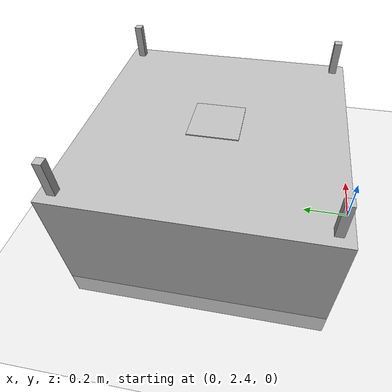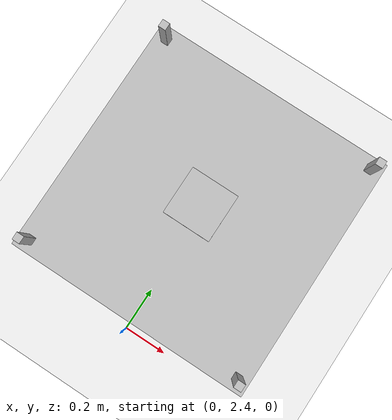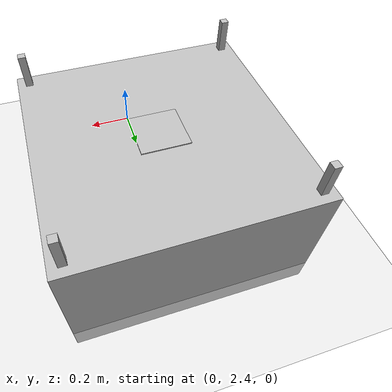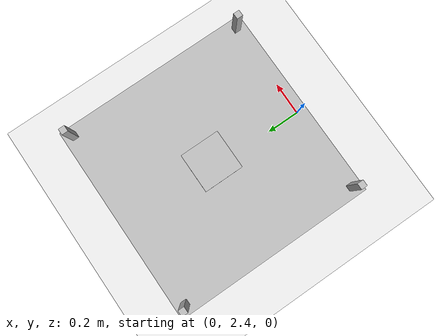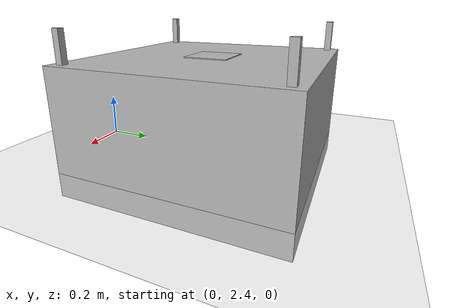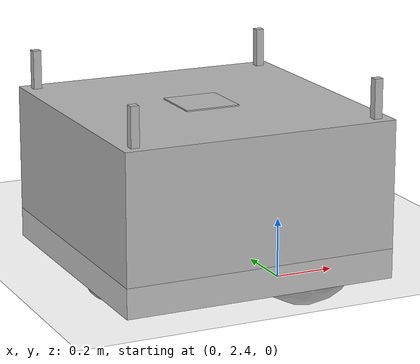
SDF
<?xml version="1.0" ?>
<sdf version="1.5">
  <world name="default">
    <scene>
      <shadows>0</shadows>
    </scene>
    <!-- A global light source -->
    <include>
      <uri>model://sun</uri>
    </include>
    <!-- A ground plane -->
    <include>
      <uri>model://ground_plane</uri>
    </include>

    <include>
      <uri>model://rover_uwb</uri>
    </include>

    <physics name='default_physics' default='0' type='ode'>
      <gravity>0 0 -9.8066</gravity>
      <ode>
        <solver>
          <type>quick</type>
          <iters>10</iters>
          <sor>1.3</sor>
          <use_dynamic_moi_rescaling>0</use_dynamic_moi_rescaling>
        </solver>
        <constraints>
          <cfm>0</cfm>
          <erp>0.2</erp>
          <contact_max_correcting_vel>100</contact_max_correcting_vel>
          <contact_surface_layer>0.001</contact_surface_layer>
        </constraints>
      </ode>
      <max_step_size>0.004</max_step_size>
      <real_time_factor>1</real_time_factor>
      <real_time_update_rate>250</real_time_update_rate>
      <magnetic_field>6.0e-6 2.3e-5 -4.2e-5</magnetic_field>
    </physics>
  </world>
</sdf>

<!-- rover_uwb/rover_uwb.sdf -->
<sdf version='1.6'>
  <model name='rover_uwb'>
    <pose>0 3 0 0 -0 0</pose>
    <link name='base_link'>
      <pose>0 -0 0.175 0 -0 0</pose>
      <inertial>
        <mass>1.14395</mass>
        <inertia>
          <ixx>0.126164</ixx>
          <ixy>0</ixy>
          <ixz>0</ixz>
          <iyy>0.416519</iyy>
          <iyz>0</iyz>
          <izz>0.481014</izz>
        </inertia>
      </inertial>
      <visual name='visual'>
        <geometry>
          <box>
            <size>1 1 0.568726</size>
          </box>
        </geometry>
      </visual>
      <collision name='collision'>
        <geometry>
          <box>
            <size>1 1 0.568726</size>
          </box>
        </geometry>
        <surface>
          <friction>
            <ode>
              <mu>0.6</mu>
              <mu2>0.6</mu2>
              <slip1>0</slip1>
              <slip2>0</slip2>
            </ode>
          </friction>
          <contact>
            <ode>
              <soft_cfm>0</soft_cfm>
              <soft_erp>0.2</soft_erp>
              <kp>1e+13</kp>
              <kd>1</kd>
              <max_vel>0.01</max_vel>
              <min_depth>0.01</min_depth>
            </ode>
            <bullet>
              <soft_cfm>0</soft_cfm>
              <soft_erp>0.2</soft_erp>
              <kp>1e+13</kp>
              <kd>1</kd>
              <split_impulse>1</split_impulse>
              <split_impulse_penetration_threshold>-0.01</split_impulse_penetration_threshold>
            </bullet>
          </contact>
        </surface>
      </collision>
    </link>

    <link name='left_wheel'>
      <pose>0.25 0.3 -0.025 -1.5707 0 0</pose>
      <inertial>
        <mass>2</mass>
        <inertia>
          <ixx>0.145833</ixx>
          <ixy>0</ixy>
          <ixz>0</ixz>
          <iyy>0.145833</iyy>
          <iyz>0</iyz>
          <izz>0.125</izz>
        </inertia>
      </inertial>
      <visual name='visual'>
        <geometry>
          <sphere>
            <radius>0.2</radius>
          </sphere>
        </geometry>
      </visual>
      <collision name='collision'>
        <geometry>
          <sphere>
            <radius>0.2</radius>
          </sphere>
        </geometry>
        <surface>
          <friction>
            <ode>
              <mu>1</mu>
              <mu2>1</mu2>
              <slip1>0</slip1>
              <slip2>0</slip2>
            </ode>
          </friction>
          <contact>
            <ode>
              <soft_cfm>0</soft_cfm>
              <soft_erp>0.2</soft_erp>
              <kp>1e+13</kp>
              <kd>1</kd>
              <max_vel>0.01</max_vel>
              <min_depth>0.01</min_depth>
            </ode>
          </contact>
        </surface>
      </collision>
    </link>

    <link name='right_wheel'>
      <pose>0.25 -0.3 -0.025 -1.5707 0 0</pose>
      <inertial>
        <mass>2</mass>
        <inertia>
          <ixx>0.145833</ixx>
          <ixy>0</ixy>
          <ixz>0</ixz>
          <iyy>0.145833</iyy>
          <iyz>0</iyz>
          <izz>0.125</izz>
        </inertia>
      </inertial>
      <visual name='visual'>
        <geometry>
          <sphere>
            <radius>0.2</radius>
          </sphere>
        </geometry>
      </visual>
      <collision name='collision'>
        <geometry>
          <sphere>
            <radius>0.2</radius>
          </sphere>
        </geometry>
        <surface>
          <friction>
            <ode>
              <mu>1</mu>
              <mu2>1</mu2>
              <slip1>0</slip1>
              <slip2>0</slip2>
            </ode>
          </friction>
          <contact>
            <ode>
              <soft_cfm>0</soft_cfm>
              <soft_erp>0.2</soft_erp>
              <kp>1e+13</kp>
              <kd>1</kd>
              <max_vel>0.01</max_vel>
              <min_depth>0.01</min_depth>
            </ode>
          </contact>
        </surface>
      </collision>
    </link>

    <link name='caster'>
      <pose>-0.35 -0 -0.125 0 -0 0</pose>
      <inertial>
        <mass>1</mass>
        <inertia>
          <ixx>0.1</ixx>
          <ixy>0</ixy>
          <ixz>0</ixz>
          <iyy>0.1</iyy>
          <iyz>0</iyz>
          <izz>0.1</izz>
        </inertia>
      </inertial>
      <visual name='visual'>
        <geometry>
          <sphere>
            <radius>0.1</radius>
          </sphere>
        </geometry>
      </visual>
      <collision name='collision'>
        <geometry>
          <sphere>
            <radius>0.1</radius>
          </sphere>
        </geometry>
      </collision>
    </link>

    <link name='anchor_0'>
      <pose>-0.45 -0.45 0.5 0 -0 0</pose>
      <inertial>
        <mass>1</mass>
        <inertia>
          <ixx>0.1</ixx>
          <ixy>0</ixy>
          <ixz>0</ixz>
          <iyy>0.1</iyy>
          <iyz>0</iyz>
          <izz>0.1</izz>
        </inertia>
      </inertial>
      <visual name='visual'>
        <geometry>
          <box>
            <size>0.03 0.03 0.2</size>
          </box>
        </geometry>
      </visual>
      <collision name='collision'>
        <geometry>
          <box>
            <size>0.03 0.03 0.2</size>
          </box>
        </geometry>
      </collision>

    </link>

    <joint name='anchor_0_joint' type='fixed'>
      <parent>base_link</parent>
      <child>anchor_0</child>
      <axis>
        <xyz>0 0 1</xyz>
      </axis>
    </joint>

    <link name='anchor_1'>
      <pose>0.45 0.45 0.5 0 -0 0</pose>
      <inertial>
        <mass>1</mass>
        <inertia>
          <ixx>0.1</ixx>
          <ixy>0</ixy>
          <ixz>0</ixz>
          <iyy>0.1</iyy>
          <iyz>0</iyz>
          <izz>0.1</izz>
        </inertia>
      </inertial>
      <visual name='visual'>
        <geometry>
          <box>
            <size>0.03 0.03 0.2</size>
          </box>
        </geometry>
      </visual>
      <collision name='collision'>
        <geometry>
          <box>
            <size>0.03 0.03 0.2</size>
          </box>
        </geometry>
      </collision>
    </link>

    <joint name='anchor_1_joint' type='fixed'>
      <parent>base_link</parent>
      <child>anchor_1</child>
      <axis>
        <xyz>0 0 1</xyz>
      </axis>
    </joint>

    <link name='anchor_2'>
      <pose>-0.45 +0.45 0.5 0 -0 0</pose>
      <inertial>
        <mass>1</mass>
        <inertia>
          <ixx>0.1</ixx>
          <ixy>0</ixy>
          <ixz>0</ixz>
          <iyy>0.1</iyy>
          <iyz>0</iyz>
          <izz>0.1</izz>
        </inertia>
      </inertial>
      <visual name='visual'>
        <geometry>
          <box>
            <size>0.03 0.03 0.2</size>
          </box>
        </geometry>
      </visual>
      <collision name='collision'>
        <geometry>
          <box>
            <size>0.03 0.03 0.2</size>
          </box>
        </geometry>
      </collision>
    </link>

    <joint name='anchor_2_joint' type='fixed'>
      <parent>base_link</parent>
      <child>anchor_2</child>
      <axis>
        <xyz>0 0 1</xyz>
      </axis>
    </joint>

    <link name='anchor_3'>
      <pose>+0.45 -0.45 0.5 0 -0 0</pose>
      <inertial>
        <mass>1</mass>
        <inertia>
          <ixx>0.1</ixx>
          <ixy>0</ixy>
          <ixz>0</ixz>
          <iyy>0.1</iyy>
          <iyz>0</iyz>
          <izz>0.1</izz>
        </inertia>
      </inertial>
      <visual name='visual'>
        <geometry>
          <box>
            <size>0.03 0.03 0.2</size>
          </box>
        </geometry>
      </visual>
      <collision name='collision'>
        <geometry>
          <box>
            <size>0.03 0.03 0.2</size>
          </box>
        </geometry>
      </collision>
    </link>

    <joint name='anchor_3_joint' type='fixed'>
      <parent>base_link</parent>
      <child>anchor_3</child>
      <axis>
        <xyz>0 0 1</xyz>
      </axis>
    </joint>

    <joint name='left_wheel_joint' type='revolute'>
      <parent>base_link</parent>
      <child>left_wheel</child>
      <axis>
        <xyz>0 0 1</xyz>
        <limit>
          <lower>-1.79769e+308</lower>
          <upper>1.79769e+308</upper>
        </limit>
      </axis>
    </joint>

    <link name='apriltag'>
      <pose frame=''>0 0 0.459 0 0 0</pose>
      <visual name='apriltag_Visual'>
        <geometry>
          <box>
            <size>0.2 0.2 0.01</size>
          </box>
        </geometry>
        <material>
          <script>
            <uri>model://Apriltag36_11_00000/materials/scripts</uri>
            <uri>model://Apriltag36_11_00000/materials/textures</uri>
            <name>Apriltag36_11_00000</name>
          </script>
        </material>
      </visual>
    </link>-->

    <joint name='apriltag_joint' type='fixed'>
      <parent>base_link</parent>
      <child>apriltag</child>
      <axis>
        <xyz>0 0 1</xyz>
      </axis>
    </joint>

    <joint name='right_wheel_joint' type='revolute'>
      <parent>base_link</parent>
      <child>right_wheel</child>
      <axis>
        <xyz>0 0 1</xyz>
        <limit>
          <lower>-1.79769e+308</lower>
          <upper>1.79769e+308</upper>
        </limit>
      </axis>
    </joint>

    <joint name='caster_wheel' type='ball'>
      <parent>base_link</parent>
      <child>caster</child>
    </joint>

    <plugin name='diff_drive' filename='libgazebo_ros_diff_drive.so'>

      <ros>
        <namespace>/rover
        </namespace>
      </ros>

      <!-- wheels -->
      <left_joint>left_wheel_joint</left_joint>
      <right_joint>right_wheel_joint</right_joint>

      <!-- kinematics -->
      <wheel_separation>1.25</wheel_separation>
      <wheel_diameter>0.6</wheel_diameter>

      <!-- limits -->
      <max_wheel_torque>100</max_wheel_torque>
      <max_wheel_acceleration>1.0</max_wheel_acceleration>

      <!-- output -->
      <publish_odom>true</publish_odom>
      <publish_odom_tf>true</publish_odom_tf>
      <publish_wheel_tf>true</publish_wheel_tf>

      <odometry_frame>odom_rover</odometry_frame>
      <robot_base_frame>base_link</robot_base_frame>

    </plugin>

    <plugin name="gazebo_ros_p3d" filename="libgazebo_ros_p3d.so">
      <ros>
        <namespace>/chassis</namespace>
      </ros>
      <body_name>base_link</body_name>
      <frame_name>world</frame_name>
      <update_rate>50</update_rate>
      <xyz_offset>0 0 0</xyz_offset>
      <rpy_offset>0 0 0</rpy_offset>
      <gaussian_noise>0</gaussian_noise>
    </plugin>

    <plugin name="gazebo_ros_uwb" filename="libros2_px4_gazebo_uwb.so">
      <link_name>anchor_0</link_name>
      <update_rate>20</update_rate>
      <reference_model_name>rover_uwb</reference_model_name>
      <reference_link_name>base_link</reference_link_name>
    </plugin>

    <plugin name="gazebo_ros_uwb" filename="libros2_px4_gazebo_uwb.so">
      <link_name>anchor_1</link_name>
      <update_rate>20</update_rate>
      <reference_model_name>rover_uwb</reference_model_name>
      <reference_link_name>base_link</reference_link_name>
    </plugin>

    <plugin name="gazebo_ros_uwb" filename="libros2_px4_gazebo_uwb.so">
      <link_name>anchor_2</link_name>
      <update_rate>20</update_rate>
      <reference_model_name>rover_uwb</reference_model_name>
      <reference_link_name>base_link</reference_link_name>
    </plugin>

    <plugin name="gazebo_ros_uwb" filename="libros2_px4_gazebo_uwb.so">
      <link_name>anchor_3</link_name>
      <update_rate>20</update_rate>
      <reference_model_name>rover_uwb</reference_model_name>
      <reference_link_name>base_link</reference_link_name>
    </plugin>

  </model>
</sdf>
